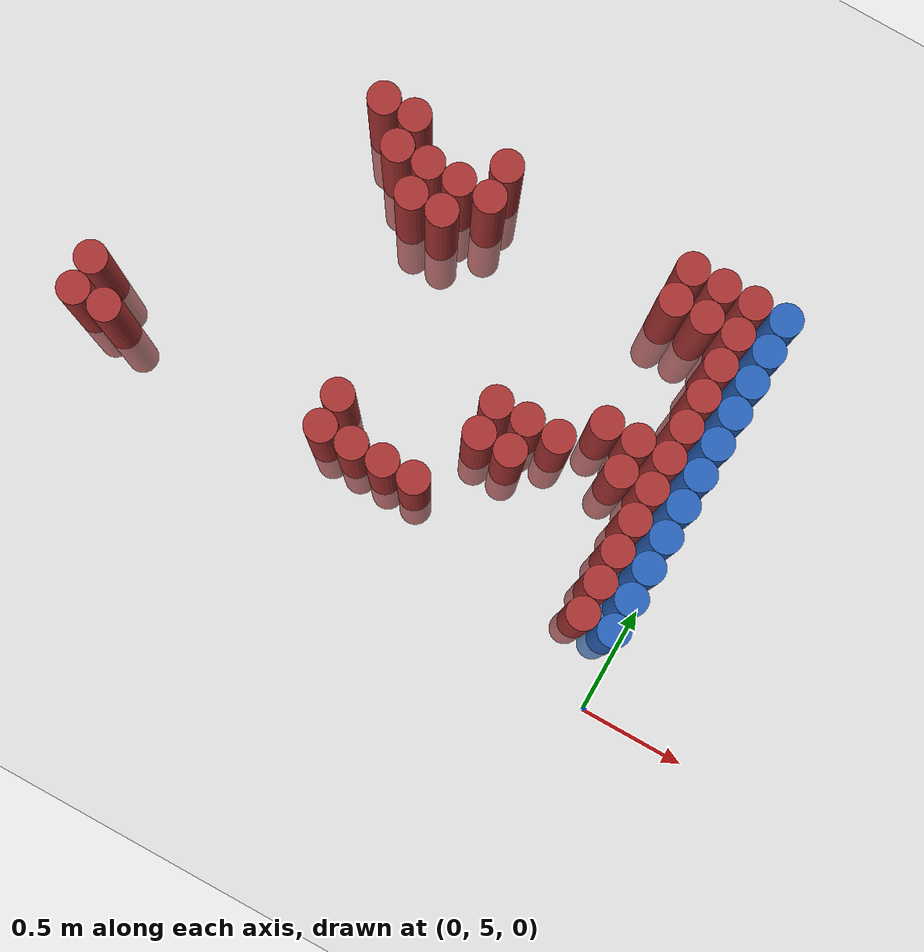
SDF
<sdf version="1.6">
 <world name="default">
  <model name="ground_plane">
   <static>1</static>
   <link name="link">
    <collision name="collision">
     <geometry><plane><normal>0 0 1</normal><size>100 100</size></plane></geometry>
     <surface><friction><ode><mu>100</mu><mu2>50</mu2></ode></friction></surface>
    </collision>
    <visual name="visual">
     <cast_shadows>0</cast_shadows>
     <geometry><plane><normal>0 0 1</normal><size>100 100</size></plane></geometry>
     <material>
      <script><uri>file://media/materials/scripts/gazebo.material</uri><name>Gazebo/Grey</name></script>
     </material>
    </visual>
   </link>
  </model>
  <model name="unit_cylinder_150">
   <static>1</static>
   <pose>-2.775000 5.475000 0.000000 0.000000 0.000000 0.000000</pose>
   <link name="link">
    <inertial>
     <mass>1</mass>
     <inertia><ixx>0.145833</ixx><ixy>0</ixy><ixz>0</ixz><iyy>0.145833</iyy><iyz>0</iyz><izz>0.125</izz></inertia>
    </inertial>
    <collision name="collision">
     <geometry><cylinder><radius>0.075000</radius><length>2</length></cylinder></geometry>
    </collision>
    <visual name="visual">
     <geometry><cylinder><radius>0.075000</radius><length>2</length></cylinder></geometry>
     <material>
      <ambient>0.648000 0.192000 0.192000 1</ambient>
      <diffuse>0.648000 0.192000 0.192000 1</diffuse>
     </material>
     <material>
      <script><name>Gazebo/Grey</name><uri>file://media/materials/scripts/gazebo.material</uri></script>
     </material>
    </visual>
   </link>
  </model>
  <model name="unit_cylinder_151">
   <static>1</static>
   <pose>-2.775000 5.625000 0.000000 0.000000 0.000000 0.000000</pose>
   <link name="link">
    <inertial>
     <mass>1</mass>
     <inertia><ixx>0.145833</ixx><ixy>0</ixy><ixz>0</ixz><iyy>0.145833</iyy><iyz>0</iyz><izz>0.125</izz></inertia>
    </inertial>
    <collision name="collision">
     <geometry><cylinder><radius>0.075000</radius><length>2</length></cylinder></geometry>
    </collision>
    <visual name="visual">
     <geometry><cylinder><radius>0.075000</radius><length>2</length></cylinder></geometry>
     <material>
      <ambient>0.648000 0.192000 0.192000 1</ambient>
      <diffuse>0.648000 0.192000 0.192000 1</diffuse>
     </material>
     <material>
      <script><name>Gazebo/Grey</name><uri>file://media/materials/scripts/gazebo.material</uri></script>
     </material>
    </visual>
   </link>
  </model>
  <model name="unit_cylinder_153">
   <static>1</static>
   <pose>-2.625000 5.475000 0.000000 0.000000 0.000000 0.000000</pose>
   <link name="link">
    <inertial>
     <mass>1</mass>
     <inertia><ixx>0.145833</ixx><ixy>0</ixy><ixz>0</ixz><iyy>0.145833</iyy><iyz>0</iyz><izz>0.125</izz></inertia>
    </inertial>
    <collision name="collision">
     <geometry><cylinder><radius>0.075000</radius><length>2</length></cylinder></geometry>
    </collision>
    <visual name="visual">
     <geometry><cylinder><radius>0.075000</radius><length>2</length></cylinder></geometry>
     <material>
      <ambient>0.648000 0.192000 0.192000 1</ambient>
      <diffuse>0.648000 0.192000 0.192000 1</diffuse>
     </material>
     <material>
      <script><name>Gazebo/Grey</name><uri>file://media/materials/scripts/gazebo.material</uri></script>
     </material>
    </visual>
   </link>
  </model>
  <model name="unit_cylinder_156">
   <static>1</static>
   <pose>-2.025000 6.825000 0.000000 0.000000 0.000000 0.000000</pose>
   <link name="link">
    <inertial>
     <mass>1</mass>
     <inertia><ixx>0.145833</ixx><ixy>0</ixy><ixz>0</ixz><iyy>0.145833</iyy><iyz>0</iyz><izz>0.125</izz></inertia>
    </inertial>
    <collision name="collision">
     <geometry><cylinder><radius>0.075000</radius><length>2</length></cylinder></geometry>
    </collision>
    <visual name="visual">
     <geometry><cylinder><radius>0.075000</radius><length>2</length></cylinder></geometry>
     <material>
      <ambient>0.648000 0.192000 0.192000 1</ambient>
      <diffuse>0.648000 0.192000 0.192000 1</diffuse>
     </material>
     <material>
      <script><name>Gazebo/Grey</name><uri>file://media/materials/scripts/gazebo.material</uri></script>
     </material>
    </visual>
   </link>
  </model>
  <model name="unit_cylinder_160">
   <static>1</static>
   <pose>-1.875000 6.675000 0.000000 0.000000 0.000000 0.000000</pose>
   <link name="link">
    <inertial>
     <mass>1</mass>
     <inertia><ixx>0.145833</ixx><ixy>0</ixy><ixz>0</ixz><iyy>0.145833</iyy><iyz>0</iyz><izz>0.125</izz></inertia>
    </inertial>
    <collision name="collision">
     <geometry><cylinder><radius>0.075000</radius><length>2</length></cylinder></geometry>
    </collision>
    <visual name="visual">
     <geometry><cylinder><radius>0.075000</radius><length>2</length></cylinder></geometry>
     <material>
      <ambient>0.648000 0.192000 0.192000 1</ambient>
      <diffuse>0.648000 0.192000 0.192000 1</diffuse>
     </material>
     <material>
      <script><name>Gazebo/Grey</name><uri>file://media/materials/scripts/gazebo.material</uri></script>
     </material>
    </visual>
   </link>
  </model>
  <model name="unit_cylinder_161">
   <static>1</static>
   <pose>-1.875000 6.825000 0.000000 0.000000 0.000000 0.000000</pose>
   <link name="link">
    <inertial>
     <mass>1</mass>
     <inertia><ixx>0.145833</ixx><ixy>0</ixy><ixz>0</ixz><iyy>0.145833</iyy><iyz>0</iyz><izz>0.125</izz></inertia>
    </inertial>
    <collision name="collision">
     <geometry><cylinder><radius>0.075000</radius><length>2</length></cylinder></geometry>
    </collision>
    <visual name="visual">
     <geometry><cylinder><radius>0.075000</radius><length>2</length></cylinder></geometry>
     <material>
      <ambient>0.648000 0.192000 0.192000 1</ambient>
      <diffuse>0.648000 0.192000 0.192000 1</diffuse>
     </material>
     <material>
      <script><name>Gazebo/Grey</name><uri>file://media/materials/scripts/gazebo.material</uri></script>
     </material>
    </visual>
   </link>
  </model>
  <model name="unit_cylinder_164">
   <static>1</static>
   <pose>-1.725000 6.525000 0.000000 0.000000 0.000000 0.000000</pose>
   <link name="link">
    <inertial>
     <mass>1</mass>
     <inertia><ixx>0.145833</ixx><ixy>0</ixy><ixz>0</ixz><iyy>0.145833</iyy><iyz>0</iyz><izz>0.125</izz></inertia>
    </inertial>
    <collision name="collision">
     <geometry><cylinder><radius>0.075000</radius><length>2</length></cylinder></geometry>
    </collision>
    <visual name="visual">
     <geometry><cylinder><radius>0.075000</radius><length>2</length></cylinder></geometry>
     <material>
      <ambient>0.648000 0.192000 0.192000 1</ambient>
      <diffuse>0.648000 0.192000 0.192000 1</diffuse>
     </material>
     <material>
      <script><name>Gazebo/Grey</name><uri>file://media/materials/scripts/gazebo.material</uri></script>
     </material>
    </visual>
   </link>
  </model>
  <model name="unit_cylinder_165">
   <static>1</static>
   <pose>-1.725000 6.675000 0.000000 0.000000 0.000000 0.000000</pose>
   <link name="link">
    <inertial>
     <mass>1</mass>
     <inertia><ixx>0.145833</ixx><ixy>0</ixy><ixz>0</ixz><iyy>0.145833</iyy><iyz>0</iyz><izz>0.125</izz></inertia>
    </inertial>
    <collision name="collision">
     <geometry><cylinder><radius>0.075000</radius><length>2</length></cylinder></geometry>
    </collision>
    <visual name="visual">
     <geometry><cylinder><radius>0.075000</radius><length>2</length></cylinder></geometry>
     <material>
      <ambient>0.648000 0.192000 0.192000 1</ambient>
      <diffuse>0.648000 0.192000 0.192000 1</diffuse>
     </material>
     <material>
      <script><name>Gazebo/Grey</name><uri>file://media/materials/scripts/gazebo.material</uri></script>
     </material>
    </visual>
   </link>
  </model>
  <model name="unit_cylinder_169">
   <static>1</static>
   <pose>-1.575000 5.475000 0.000000 0.000000 0.000000 0.000000</pose>
   <link name="link">
    <inertial>
     <mass>1</mass>
     <inertia><ixx>0.145833</ixx><ixy>0</ixy><ixz>0</ixz><iyy>0.145833</iyy><iyz>0</iyz><izz>0.125</izz></inertia>
    </inertial>
    <collision name="collision">
     <geometry><cylinder><radius>0.075000</radius><length>2</length></cylinder></geometry>
    </collision>
    <visual name="visual">
     <geometry><cylinder><radius>0.075000</radius><length>2</length></cylinder></geometry>
     <material>
      <ambient>0.648000 0.192000 0.192000 1</ambient>
      <diffuse>0.648000 0.192000 0.192000 1</diffuse>
     </material>
     <material>
      <script><name>Gazebo/Grey</name><uri>file://media/materials/scripts/gazebo.material</uri></script>
     </material>
    </visual>
   </link>
  </model>
  <model name="unit_cylinder_170">
   <static>1</static>
   <pose>-1.575000 5.625000 0.000000 0.000000 0.000000 0.000000</pose>
   <link name="link">
    <inertial>
     <mass>1</mass>
     <inertia><ixx>0.145833</ixx><ixy>0</ixy><ixz>0</ixz><iyy>0.145833</iyy><iyz>0</iyz><izz>0.125</izz></inertia>
    </inertial>
    <collision name="collision">
     <geometry><cylinder><radius>0.075000</radius><length>2</length></cylinder></geometry>
    </collision>
    <visual name="visual">
     <geometry><cylinder><radius>0.075000</radius><length>2</length></cylinder></geometry>
     <material>
      <ambient>0.648000 0.192000 0.192000 1</ambient>
      <diffuse>0.648000 0.192000 0.192000 1</diffuse>
     </material>
     <material>
      <script><name>Gazebo/Grey</name><uri>file://media/materials/scripts/gazebo.material</uri></script>
     </material>
    </visual>
   </link>
  </model>
  <model name="unit_cylinder_171">
   <static>1</static>
   <pose>-1.575000 6.525000 0.000000 0.000000 0.000000 0.000000</pose>
   <link name="link">
    <inertial>
     <mass>1</mass>
     <inertia><ixx>0.145833</ixx><ixy>0</ixy><ixz>0</ixz><iyy>0.145833</iyy><iyz>0</iyz><izz>0.125</izz></inertia>
    </inertial>
    <collision name="collision">
     <geometry><cylinder><radius>0.075000</radius><length>2</length></cylinder></geometry>
    </collision>
    <visual name="visual">
     <geometry><cylinder><radius>0.075000</radius><length>2</length></cylinder></geometry>
     <material>
      <ambient>0.648000 0.192000 0.192000 1</ambient>
      <diffuse>0.648000 0.192000 0.192000 1</diffuse>
     </material>
     <material>
      <script><name>Gazebo/Grey</name><uri>file://media/materials/scripts/gazebo.material</uri></script>
     </material>
    </visual>
   </link>
  </model>
  <model name="unit_cylinder_172">
   <static>1</static>
   <pose>-1.575000 6.675000 0.000000 0.000000 0.000000 0.000000</pose>
   <link name="link">
    <inertial>
     <mass>1</mass>
     <inertia><ixx>0.145833</ixx><ixy>0</ixy><ixz>0</ixz><iyy>0.145833</iyy><iyz>0</iyz><izz>0.125</izz></inertia>
    </inertial>
    <collision name="collision">
     <geometry><cylinder><radius>0.075000</radius><length>2</length></cylinder></geometry>
    </collision>
    <visual name="visual">
     <geometry><cylinder><radius>0.075000</radius><length>2</length></cylinder></geometry>
     <material>
      <ambient>0.648000 0.192000 0.192000 1</ambient>
      <diffuse>0.648000 0.192000 0.192000 1</diffuse>
     </material>
     <material>
      <script><name>Gazebo/Grey</name><uri>file://media/materials/scripts/gazebo.material</uri></script>
     </material>
    </visual>
   </link>
  </model>
  <model name="unit_cylinder_177">
   <static>1</static>
   <pose>-1.425000 5.475000 0.000000 0.000000 0.000000 0.000000</pose>
   <link name="link">
    <inertial>
     <mass>1</mass>
     <inertia><ixx>0.145833</ixx><ixy>0</ixy><ixz>0</ixz><iyy>0.145833</iyy><iyz>0</iyz><izz>0.125</izz></inertia>
    </inertial>
    <collision name="collision">
     <geometry><cylinder><radius>0.075000</radius><length>2</length></cylinder></geometry>
    </collision>
    <visual name="visual">
     <geometry><cylinder><radius>0.075000</radius><length>2</length></cylinder></geometry>
     <material>
      <ambient>0.648000 0.192000 0.192000 1</ambient>
      <diffuse>0.648000 0.192000 0.192000 1</diffuse>
     </material>
     <material>
      <script><name>Gazebo/Grey</name><uri>file://media/materials/scripts/gazebo.material</uri></script>
     </material>
    </visual>
   </link>
  </model>
  <model name="unit_cylinder_178">
   <static>1</static>
   <pose>-1.425000 6.675000 0.000000 0.000000 0.000000 0.000000</pose>
   <link name="link">
    <inertial>
     <mass>1</mass>
     <inertia><ixx>0.145833</ixx><ixy>0</ixy><ixz>0</ixz><iyy>0.145833</iyy><iyz>0</iyz><izz>0.125</izz></inertia>
    </inertial>
    <collision name="collision">
     <geometry><cylinder><radius>0.075000</radius><length>2</length></cylinder></geometry>
    </collision>
    <visual name="visual">
     <geometry><cylinder><radius>0.075000</radius><length>2</length></cylinder></geometry>
     <material>
      <ambient>0.648000 0.192000 0.192000 1</ambient>
      <diffuse>0.648000 0.192000 0.192000 1</diffuse>
     </material>
     <material>
      <script><name>Gazebo/Grey</name><uri>file://media/materials/scripts/gazebo.material</uri></script>
     </material>
    </visual>
   </link>
  </model>
  <model name="unit_cylinder_179">
   <static>1</static>
   <pose>-1.425000 6.825000 0.000000 0.000000 0.000000 0.000000</pose>
   <link name="link">
    <inertial>
     <mass>1</mass>
     <inertia><ixx>0.145833</ixx><ixy>0</ixy><ixz>0</ixz><iyy>0.145833</iyy><iyz>0</iyz><izz>0.125</izz></inertia>
    </inertial>
    <collision name="collision">
     <geometry><cylinder><radius>0.075000</radius><length>2</length></cylinder></geometry>
    </collision>
    <visual name="visual">
     <geometry><cylinder><radius>0.075000</radius><length>2</length></cylinder></geometry>
     <material>
      <ambient>0.648000 0.192000 0.192000 1</ambient>
      <diffuse>0.648000 0.192000 0.192000 1</diffuse>
     </material>
     <material>
      <script><name>Gazebo/Grey</name><uri>file://media/materials/scripts/gazebo.material</uri></script>
     </material>
    </visual>
   </link>
  </model>
  <model name="unit_cylinder_182">
   <static>1</static>
   <pose>-1.275000 5.475000 0.000000 0.000000 0.000000 0.000000</pose>
   <link name="link">
    <inertial>
     <mass>1</mass>
     <inertia><ixx>0.145833</ixx><ixy>0</ixy><ixz>0</ixz><iyy>0.145833</iyy><iyz>0</iyz><izz>0.125</izz></inertia>
    </inertial>
    <collision name="collision">
     <geometry><cylinder><radius>0.075000</radius><length>2</length></cylinder></geometry>
    </collision>
    <visual name="visual">
     <geometry><cylinder><radius>0.075000</radius><length>2</length></cylinder></geometry>
     <material>
      <ambient>0.648000 0.192000 0.192000 1</ambient>
      <diffuse>0.648000 0.192000 0.192000 1</diffuse>
     </material>
     <material>
      <script><name>Gazebo/Grey</name><uri>file://media/materials/scripts/gazebo.material</uri></script>
     </material>
    </visual>
   </link>
  </model>
  <model name="unit_cylinder_184">
   <static>1</static>
   <pose>-1.125000 5.475000 0.000000 0.000000 0.000000 0.000000</pose>
   <link name="link">
    <inertial>
     <mass>1</mass>
     <inertia><ixx>0.145833</ixx><ixy>0</ixy><ixz>0</ixz><iyy>0.145833</iyy><iyz>0</iyz><izz>0.125</izz></inertia>
    </inertial>
    <collision name="collision">
     <geometry><cylinder><radius>0.075000</radius><length>2</length></cylinder></geometry>
    </collision>
    <visual name="visual">
     <geometry><cylinder><radius>0.075000</radius><length>2</length></cylinder></geometry>
     <material>
      <ambient>0.648000 0.192000 0.192000 1</ambient>
      <diffuse>0.648000 0.192000 0.192000 1</diffuse>
     </material>
     <material>
      <script><name>Gazebo/Grey</name><uri>file://media/materials/scripts/gazebo.material</uri></script>
     </material>
    </visual>
   </link>
  </model>
  <model name="unit_cylinder_185">
   <static>1</static>
   <pose>-0.975000 5.775000 0.000000 0.000000 0.000000 0.000000</pose>
   <link name="link">
    <inertial>
     <mass>1</mass>
     <inertia><ixx>0.145833</ixx><ixy>0</ixy><ixz>0</ixz><iyy>0.145833</iyy><iyz>0</iyz><izz>0.125</izz></inertia>
    </inertial>
    <collision name="collision">
     <geometry><cylinder><radius>0.075000</radius><length>2</length></cylinder></geometry>
    </collision>
    <visual name="visual">
     <geometry><cylinder><radius>0.075000</radius><length>2</length></cylinder></geometry>
     <material>
      <ambient>0.648000 0.192000 0.192000 1</ambient>
      <diffuse>0.648000 0.192000 0.192000 1</diffuse>
     </material>
     <material>
      <script><name>Gazebo/Grey</name><uri>file://media/materials/scripts/gazebo.material</uri></script>
     </material>
    </visual>
   </link>
  </model>
  <model name="unit_cylinder_186">
   <static>1</static>
   <pose>-0.975000 5.925000 0.000000 0.000000 0.000000 0.000000</pose>
   <link name="link">
    <inertial>
     <mass>1</mass>
     <inertia><ixx>0.145833</ixx><ixy>0</ixy><ixz>0</ixz><iyy>0.145833</iyy><iyz>0</iyz><izz>0.125</izz></inertia>
    </inertial>
    <collision name="collision">
     <geometry><cylinder><radius>0.075000</radius><length>2</length></cylinder></geometry>
    </collision>
    <visual name="visual">
     <geometry><cylinder><radius>0.075000</radius><length>2</length></cylinder></geometry>
     <material>
      <ambient>0.648000 0.192000 0.192000 1</ambient>
      <diffuse>0.648000 0.192000 0.192000 1</diffuse>
     </material>
     <material>
      <script><name>Gazebo/Grey</name><uri>file://media/materials/scripts/gazebo.material</uri></script>
     </material>
    </visual>
   </link>
  </model>
  <model name="unit_cylinder_189">
   <static>1</static>
   <pose>-0.825000 5.775000 0.000000 0.000000 0.000000 0.000000</pose>
   <link name="link">
    <inertial>
     <mass>1</mass>
     <inertia><ixx>0.145833</ixx><ixy>0</ixy><ixz>0</ixz><iyy>0.145833</iyy><iyz>0</iyz><izz>0.125</izz></inertia>
    </inertial>
    <collision name="collision">
     <geometry><cylinder><radius>0.075000</radius><length>2</length></cylinder></geometry>
    </collision>
    <visual name="visual">
     <geometry><cylinder><radius>0.075000</radius><length>2</length></cylinder></geometry>
     <material>
      <ambient>0.648000 0.192000 0.192000 1</ambient>
      <diffuse>0.648000 0.192000 0.192000 1</diffuse>
     </material>
     <material>
      <script><name>Gazebo/Grey</name><uri>file://media/materials/scripts/gazebo.material</uri></script>
     </material>
    </visual>
   </link>
  </model>
  <model name="unit_cylinder_190">
   <static>1</static>
   <pose>-0.825000 5.925000 0.000000 0.000000 0.000000 0.000000</pose>
   <link name="link">
    <inertial>
     <mass>1</mass>
     <inertia><ixx>0.145833</ixx><ixy>0</ixy><ixz>0</ixz><iyy>0.145833</iyy><iyz>0</iyz><izz>0.125</izz></inertia>
    </inertial>
    <collision name="collision">
     <geometry><cylinder><radius>0.075000</radius><length>2</length></cylinder></geometry>
    </collision>
    <visual name="visual">
     <geometry><cylinder><radius>0.075000</radius><length>2</length></cylinder></geometry>
     <material>
      <ambient>0.648000 0.192000 0.192000 1</ambient>
      <diffuse>0.648000 0.192000 0.192000 1</diffuse>
     </material>
     <material>
      <script><name>Gazebo/Grey</name><uri>file://media/materials/scripts/gazebo.material</uri></script>
     </material>
    </visual>
   </link>
  </model>
  <model name="unit_cylinder_193">
   <static>1</static>
   <pose>-0.675000 5.925000 0.000000 0.000000 0.000000 0.000000</pose>
   <link name="link">
    <inertial>
     <mass>1</mass>
     <inertia><ixx>0.145833</ixx><ixy>0</ixy><ixz>0</ixz><iyy>0.145833</iyy><iyz>0</iyz><izz>0.125</izz></inertia>
    </inertial>
    <collision name="collision">
     <geometry><cylinder><radius>0.075000</radius><length>2</length></cylinder></geometry>
    </collision>
    <visual name="visual">
     <geometry><cylinder><radius>0.075000</radius><length>2</length></cylinder></geometry>
     <material>
      <ambient>0.648000 0.192000 0.192000 1</ambient>
      <diffuse>0.648000 0.192000 0.192000 1</diffuse>
     </material>
     <material>
      <script><name>Gazebo/Grey</name><uri>file://media/materials/scripts/gazebo.material</uri></script>
     </material>
    </visual>
   </link>
  </model>
  <model name="unit_cylinder_196">
   <static>1</static>
   <pose>-0.525000 6.075000 0.000000 0.000000 0.000000 0.000000</pose>
   <link name="link">
    <inertial>
     <mass>1</mass>
     <inertia><ixx>0.145833</ixx><ixy>0</ixy><ixz>0</ixz><iyy>0.145833</iyy><iyz>0</iyz><izz>0.125</izz></inertia>
    </inertial>
    <collision name="collision">
     <geometry><cylinder><radius>0.075000</radius><length>2</length></cylinder></geometry>
    </collision>
    <visual name="visual">
     <geometry><cylinder><radius>0.075000</radius><length>2</length></cylinder></geometry>
     <material>
      <ambient>0.648000 0.192000 0.192000 1</ambient>
      <diffuse>0.648000 0.192000 0.192000 1</diffuse>
     </material>
     <material>
      <script><name>Gazebo/Grey</name><uri>file://media/materials/scripts/gazebo.material</uri></script>
     </material>
    </visual>
   </link>
  </model>
  <model name="unit_cylinder_197">
   <static>1</static>
   <pose>-0.525000 6.675000 0.000000 0.000000 0.000000 0.000000</pose>
   <link name="link">
    <inertial>
     <mass>1</mass>
     <inertia><ixx>0.145833</ixx><ixy>0</ixy><ixz>0</ixz><iyy>0.145833</iyy><iyz>0</iyz><izz>0.125</izz></inertia>
    </inertial>
    <collision name="collision">
     <geometry><cylinder><radius>0.075000</radius><length>2</length></cylinder></geometry>
    </collision>
    <visual name="visual">
     <geometry><cylinder><radius>0.075000</radius><length>2</length></cylinder></geometry>
     <material>
      <ambient>0.648000 0.192000 0.192000 1</ambient>
      <diffuse>0.648000 0.192000 0.192000 1</diffuse>
     </material>
     <material>
      <script><name>Gazebo/Grey</name><uri>file://media/materials/scripts/gazebo.material</uri></script>
     </material>
    </visual>
   </link>
  </model>
  <model name="unit_cylinder_198">
   <static>1</static>
   <pose>-0.525000 6.825000 0.000000 0.000000 0.000000 0.000000</pose>
   <link name="link">
    <inertial>
     <mass>1</mass>
     <inertia><ixx>0.145833</ixx><ixy>0</ixy><ixz>0</ixz><iyy>0.145833</iyy><iyz>0</iyz><izz>0.125</izz></inertia>
    </inertial>
    <collision name="collision">
     <geometry><cylinder><radius>0.075000</radius><length>2</length></cylinder></geometry>
    </collision>
    <visual name="visual">
     <geometry><cylinder><radius>0.075000</radius><length>2</length></cylinder></geometry>
     <material>
      <ambient>0.648000 0.192000 0.192000 1</ambient>
      <diffuse>0.648000 0.192000 0.192000 1</diffuse>
     </material>
     <material>
      <script><name>Gazebo/Grey</name><uri>file://media/materials/scripts/gazebo.material</uri></script>
     </material>
    </visual>
   </link>
  </model>
  <model name="unit_cylinder_200">
   <static>1</static>
   <pose>-0.375000 5.925000 0.000000 0.000000 0.000000 0.000000</pose>
   <link name="link">
    <inertial>
     <mass>1</mass>
     <inertia><ixx>0.145833</ixx><ixy>0</ixy><ixz>0</ixz><iyy>0.145833</iyy><iyz>0</iyz><izz>0.125</izz></inertia>
    </inertial>
    <collision name="collision">
     <geometry><cylinder><radius>0.075000</radius><length>2</length></cylinder></geometry>
    </collision>
    <visual name="visual">
     <geometry><cylinder><radius>0.075000</radius><length>2</length></cylinder></geometry>
     <material>
      <ambient>0.648000 0.192000 0.192000 1</ambient>
      <diffuse>0.648000 0.192000 0.192000 1</diffuse>
     </material>
     <material>
      <script><name>Gazebo/Grey</name><uri>file://media/materials/scripts/gazebo.material</uri></script>
     </material>
    </visual>
   </link>
  </model>
  <model name="unit_cylinder_201">
   <static>1</static>
   <pose>-0.375000 6.075000 0.000000 0.000000 0.000000 0.000000</pose>
   <link name="link">
    <inertial>
     <mass>1</mass>
     <inertia><ixx>0.145833</ixx><ixy>0</ixy><ixz>0</ixz><iyy>0.145833</iyy><iyz>0</iyz><izz>0.125</izz></inertia>
    </inertial>
    <collision name="collision">
     <geometry><cylinder><radius>0.075000</radius><length>2</length></cylinder></geometry>
    </collision>
    <visual name="visual">
     <geometry><cylinder><radius>0.075000</radius><length>2</length></cylinder></geometry>
     <material>
      <ambient>0.648000 0.192000 0.192000 1</ambient>
      <diffuse>0.648000 0.192000 0.192000 1</diffuse>
     </material>
     <material>
      <script><name>Gazebo/Grey</name><uri>file://media/materials/scripts/gazebo.material</uri></script>
     </material>
    </visual>
   </link>
  </model>
  <model name="unit_cylinder_202">
   <static>1</static>
   <pose>-0.375000 6.675000 0.000000 0.000000 0.000000 0.000000</pose>
   <link name="link">
    <inertial>
     <mass>1</mass>
     <inertia><ixx>0.145833</ixx><ixy>0</ixy><ixz>0</ixz><iyy>0.145833</iyy><iyz>0</iyz><izz>0.125</izz></inertia>
    </inertial>
    <collision name="collision">
     <geometry><cylinder><radius>0.075000</radius><length>2</length></cylinder></geometry>
    </collision>
    <visual name="visual">
     <geometry><cylinder><radius>0.075000</radius><length>2</length></cylinder></geometry>
     <material>
      <ambient>0.648000 0.192000 0.192000 1</ambient>
      <diffuse>0.648000 0.192000 0.192000 1</diffuse>
     </material>
     <material>
      <script><name>Gazebo/Grey</name><uri>file://media/materials/scripts/gazebo.material</uri></script>
     </material>
    </visual>
   </link>
  </model>
  <model name="unit_cylinder_203">
   <static>1</static>
   <pose>-0.375000 6.825000 0.000000 0.000000 0.000000 0.000000</pose>
   <link name="link">
    <inertial>
     <mass>1</mass>
     <inertia><ixx>0.145833</ixx><ixy>0</ixy><ixz>0</ixz><iyy>0.145833</iyy><iyz>0</iyz><izz>0.125</izz></inertia>
    </inertial>
    <collision name="collision">
     <geometry><cylinder><radius>0.075000</radius><length>2</length></cylinder></geometry>
    </collision>
    <visual name="visual">
     <geometry><cylinder><radius>0.075000</radius><length>2</length></cylinder></geometry>
     <material>
      <ambient>0.648000 0.192000 0.192000 1</ambient>
      <diffuse>0.648000 0.192000 0.192000 1</diffuse>
     </material>
     <material>
      <script><name>Gazebo/Grey</name><uri>file://media/materials/scripts/gazebo.material</uri></script>
     </material>
    </visual>
   </link>
  </model>
  <model name="unit_cylinder_205">
   <static>1</static>
   <pose>-0.225000 5.325000 0.000000 0.000000 0.000000 0.000000</pose>
   <link name="link">
    <inertial>
     <mass>1</mass>
     <inertia><ixx>0.145833</ixx><ixy>0</ixy><ixz>0</ixz><iyy>0.145833</iyy><iyz>0</iyz><izz>0.125</izz></inertia>
    </inertial>
    <collision name="collision">
     <geometry><cylinder><radius>0.075000</radius><length>2</length></cylinder></geometry>
    </collision>
    <visual name="visual">
     <geometry><cylinder><radius>0.075000</radius><length>2</length></cylinder></geometry>
     <material>
      <ambient>0.648000 0.192000 0.192000 1</ambient>
      <diffuse>0.648000 0.192000 0.192000 1</diffuse>
     </material>
     <material>
      <script><name>Gazebo/Grey</name><uri>file://media/materials/scripts/gazebo.material</uri></script>
     </material>
    </visual>
   </link>
  </model>
  <model name="unit_cylinder_206">
   <static>1</static>
   <pose>-0.225000 5.475000 0.000000 0.000000 0.000000 0.000000</pose>
   <link name="link">
    <inertial>
     <mass>1</mass>
     <inertia><ixx>0.145833</ixx><ixy>0</ixy><ixz>0</ixz><iyy>0.145833</iyy><iyz>0</iyz><izz>0.125</izz></inertia>
    </inertial>
    <collision name="collision">
     <geometry><cylinder><radius>0.075000</radius><length>2</length></cylinder></geometry>
    </collision>
    <visual name="visual">
     <geometry><cylinder><radius>0.075000</radius><length>2</length></cylinder></geometry>
     <material>
      <ambient>0.648000 0.192000 0.192000 1</ambient>
      <diffuse>0.648000 0.192000 0.192000 1</diffuse>
     </material>
     <material>
      <script><name>Gazebo/Grey</name><uri>file://media/materials/scripts/gazebo.material</uri></script>
     </material>
    </visual>
   </link>
  </model>
  <model name="unit_cylinder_207">
   <static>1</static>
   <pose>-0.225000 5.625000 0.000000 0.000000 0.000000 0.000000</pose>
   <link name="link">
    <inertial>
     <mass>1</mass>
     <inertia><ixx>0.145833</ixx><ixy>0</ixy><ixz>0</ixz><iyy>0.145833</iyy><iyz>0</iyz><izz>0.125</izz></inertia>
    </inertial>
    <collision name="collision">
     <geometry><cylinder><radius>0.075000</radius><length>2</length></cylinder></geometry>
    </collision>
    <visual name="visual">
     <geometry><cylinder><radius>0.075000</radius><length>2</length></cylinder></geometry>
     <material>
      <ambient>0.648000 0.192000 0.192000 1</ambient>
      <diffuse>0.648000 0.192000 0.192000 1</diffuse>
     </material>
     <material>
      <script><name>Gazebo/Grey</name><uri>file://media/materials/scripts/gazebo.material</uri></script>
     </material>
    </visual>
   </link>
  </model>
  <model name="unit_cylinder_208">
   <static>1</static>
   <pose>-0.225000 5.775000 0.000000 0.000000 0.000000 0.000000</pose>
   <link name="link">
    <inertial>
     <mass>1</mass>
     <inertia><ixx>0.145833</ixx><ixy>0</ixy><ixz>0</ixz><iyy>0.145833</iyy><iyz>0</iyz><izz>0.125</izz></inertia>
    </inertial>
    <collision name="collision">
     <geometry><cylinder><radius>0.075000</radius><length>2</length></cylinder></geometry>
    </collision>
    <visual name="visual">
     <geometry><cylinder><radius>0.075000</radius><length>2</length></cylinder></geometry>
     <material>
      <ambient>0.648000 0.192000 0.192000 1</ambient>
      <diffuse>0.648000 0.192000 0.192000 1</diffuse>
     </material>
     <material>
      <script><name>Gazebo/Grey</name><uri>file://media/materials/scripts/gazebo.material</uri></script>
     </material>
    </visual>
   </link>
  </model>
  <model name="unit_cylinder_209">
   <static>1</static>
   <pose>-0.225000 5.925000 0.000000 0.000000 0.000000 0.000000</pose>
   <link name="link">
    <inertial>
     <mass>1</mass>
     <inertia><ixx>0.145833</ixx><ixy>0</ixy><ixz>0</ixz><iyy>0.145833</iyy><iyz>0</iyz><izz>0.125</izz></inertia>
    </inertial>
    <collision name="collision">
     <geometry><cylinder><radius>0.075000</radius><length>2</length></cylinder></geometry>
    </collision>
    <visual name="visual">
     <geometry><cylinder><radius>0.075000</radius><length>2</length></cylinder></geometry>
     <material>
      <ambient>0.648000 0.192000 0.192000 1</ambient>
      <diffuse>0.648000 0.192000 0.192000 1</diffuse>
     </material>
     <material>
      <script><name>Gazebo/Grey</name><uri>file://media/materials/scripts/gazebo.material</uri></script>
     </material>
    </visual>
   </link>
  </model>
  <model name="unit_cylinder_210">
   <static>1</static>
   <pose>-0.225000 6.075000 0.000000 0.000000 0.000000 0.000000</pose>
   <link name="link">
    <inertial>
     <mass>1</mass>
     <inertia><ixx>0.145833</ixx><ixy>0</ixy><ixz>0</ixz><iyy>0.145833</iyy><iyz>0</iyz><izz>0.125</izz></inertia>
    </inertial>
    <collision name="collision">
     <geometry><cylinder><radius>0.075000</radius><length>2</length></cylinder></geometry>
    </collision>
    <visual name="visual">
     <geometry><cylinder><radius>0.075000</radius><length>2</length></cylinder></geometry>
     <material>
      <ambient>0.648000 0.192000 0.192000 1</ambient>
      <diffuse>0.648000 0.192000 0.192000 1</diffuse>
     </material>
     <material>
      <script><name>Gazebo/Grey</name><uri>file://media/materials/scripts/gazebo.material</uri></script>
     </material>
    </visual>
   </link>
  </model>
  <model name="unit_cylinder_211">
   <static>1</static>
   <pose>-0.225000 6.225000 0.000000 0.000000 0.000000 0.000000</pose>
   <link name="link">
    <inertial>
     <mass>1</mass>
     <inertia><ixx>0.145833</ixx><ixy>0</ixy><ixz>0</ixz><iyy>0.145833</iyy><iyz>0</iyz><izz>0.125</izz></inertia>
    </inertial>
    <collision name="collision">
     <geometry><cylinder><radius>0.075000</radius><length>2</length></cylinder></geometry>
    </collision>
    <visual name="visual">
     <geometry><cylinder><radius>0.075000</radius><length>2</length></cylinder></geometry>
     <material>
      <ambient>0.648000 0.192000 0.192000 1</ambient>
      <diffuse>0.648000 0.192000 0.192000 1</diffuse>
     </material>
     <material>
      <script><name>Gazebo/Grey</name><uri>file://media/materials/scripts/gazebo.material</uri></script>
     </material>
    </visual>
   </link>
  </model>
  <model name="unit_cylinder_212">
   <static>1</static>
   <pose>-0.225000 6.375000 0.000000 0.000000 0.000000 0.000000</pose>
   <link name="link">
    <inertial>
     <mass>1</mass>
     <inertia><ixx>0.145833</ixx><ixy>0</ixy><ixz>0</ixz><iyy>0.145833</iyy><iyz>0</iyz><izz>0.125</izz></inertia>
    </inertial>
    <collision name="collision">
     <geometry><cylinder><radius>0.075000</radius><length>2</length></cylinder></geometry>
    </collision>
    <visual name="visual">
     <geometry><cylinder><radius>0.075000</radius><length>2</length></cylinder></geometry>
     <material>
      <ambient>0.648000 0.192000 0.192000 1</ambient>
      <diffuse>0.648000 0.192000 0.192000 1</diffuse>
     </material>
     <material>
      <script><name>Gazebo/Grey</name><uri>file://media/materials/scripts/gazebo.material</uri></script>
     </material>
    </visual>
   </link>
  </model>
  <model name="unit_cylinder_213">
   <static>1</static>
   <pose>-0.225000 6.525000 0.000000 0.000000 0.000000 0.000000</pose>
   <link name="link">
    <inertial>
     <mass>1</mass>
     <inertia><ixx>0.145833</ixx><ixy>0</ixy><ixz>0</ixz><iyy>0.145833</iyy><iyz>0</iyz><izz>0.125</izz></inertia>
    </inertial>
    <collision name="collision">
     <geometry><cylinder><radius>0.075000</radius><length>2</length></cylinder></geometry>
    </collision>
    <visual name="visual">
     <geometry><cylinder><radius>0.075000</radius><length>2</length></cylinder></geometry>
     <material>
      <ambient>0.648000 0.192000 0.192000 1</ambient>
      <diffuse>0.648000 0.192000 0.192000 1</diffuse>
     </material>
     <material>
      <script><name>Gazebo/Grey</name><uri>file://media/materials/scripts/gazebo.material</uri></script>
     </material>
    </visual>
   </link>
  </model>
  <model name="unit_cylinder_214">
   <static>1</static>
   <pose>-0.225000 6.675000 0.000000 0.000000 0.000000 0.000000</pose>
   <link name="link">
    <inertial>
     <mass>1</mass>
     <inertia><ixx>0.145833</ixx><ixy>0</ixy><ixz>0</ixz><iyy>0.145833</iyy><iyz>0</iyz><izz>0.125</izz></inertia>
    </inertial>
    <collision name="collision">
     <geometry><cylinder><radius>0.075000</radius><length>2</length></cylinder></geometry>
    </collision>
    <visual name="visual">
     <geometry><cylinder><radius>0.075000</radius><length>2</length></cylinder></geometry>
     <material>
      <ambient>0.648000 0.192000 0.192000 1</ambient>
      <diffuse>0.648000 0.192000 0.192000 1</diffuse>
     </material>
     <material>
      <script><name>Gazebo/Grey</name><uri>file://media/materials/scripts/gazebo.material</uri></script>
     </material>
    </visual>
   </link>
  </model>
  <model name="unit_cylinder_215">
   <static>1</static>
   <pose>-0.225000 6.825000 0.000000 0.000000 0.000000 0.000000</pose>
   <link name="link">
    <inertial>
     <mass>1</mass>
     <inertia><ixx>0.145833</ixx><ixy>0</ixy><ixz>0</ixz><iyy>0.145833</iyy><iyz>0</iyz><izz>0.125</izz></inertia>
    </inertial>
    <collision name="collision">
     <geometry><cylinder><radius>0.075000</radius><length>2</length></cylinder></geometry>
    </collision>
    <visual name="visual">
     <geometry><cylinder><radius>0.075000</radius><length>2</length></cylinder></geometry>
     <material>
      <ambient>0.648000 0.192000 0.192000 1</ambient>
      <diffuse>0.648000 0.192000 0.192000 1</diffuse>
     </material>
     <material>
      <script><name>Gazebo/Grey</name><uri>file://media/materials/scripts/gazebo.material</uri></script>
     </material>
    </visual>
   </link>
  </model>
  <model name="unit_cylinder_227">
   <static>1</static>
   <pose>-0.075000 5.325000 0.000000 0.000000 0.000000 0.000000</pose>
   <link name="link">
    <inertial>
     <mass>1</mass>
     <inertia><ixx>0.145833</ixx><ixy>0</ixy><ixz>0</ixz><iyy>0.145833</iyy><iyz>0</iyz><izz>0.125</izz></inertia>
    </inertial>
    <collision name="collision">
     <geometry><cylinder><radius>0.075000</radius><length>2</length></cylinder></geometry>
    </collision>
    <visual name="visual">
     <geometry><cylinder><radius>0.075000</radius><length>2</length></cylinder></geometry>
     <material>
      <ambient>0.152000 0.379000 0.720000 1</ambient>
      <diffuse>0.152000 0.379000 0.720000 1</diffuse>
     </material>
     <material>
      <script><name>Gazebo/Grey</name><uri>file://media/materials/scripts/gazebo.material</uri></script>
     </material>
    </visual>
   </link>
  </model>
  <model name="unit_cylinder_228">
   <static>1</static>
   <pose>-0.075000 5.475000 0.000000 0.000000 0.000000 0.000000</pose>
   <link name="link">
    <inertial>
     <mass>1</mass>
     <inertia><ixx>0.145833</ixx><ixy>0</ixy><ixz>0</ixz><iyy>0.145833</iyy><iyz>0</iyz><izz>0.125</izz></inertia>
    </inertial>
    <collision name="collision">
     <geometry><cylinder><radius>0.075000</radius><length>2</length></cylinder></geometry>
    </collision>
    <visual name="visual">
     <geometry><cylinder><radius>0.075000</radius><length>2</length></cylinder></geometry>
     <material>
      <ambient>0.152000 0.379000 0.720000 1</ambient>
      <diffuse>0.152000 0.379000 0.720000 1</diffuse>
     </material>
     <material>
      <script><name>Gazebo/Grey</name><uri>file://media/materials/scripts/gazebo.material</uri></script>
     </material>
    </visual>
   </link>
  </model>
  <model name="unit_cylinder_229">
   <static>1</static>
   <pose>-0.075000 5.625000 0.000000 0.000000 0.000000 0.000000</pose>
   <link name="link">
    <inertial>
     <mass>1</mass>
     <inertia><ixx>0.145833</ixx><ixy>0</ixy><ixz>0</ixz><iyy>0.145833</iyy><iyz>0</iyz><izz>0.125</izz></inertia>
    </inertial>
    <collision name="collision">
     <geometry><cylinder><radius>0.075000</radius><length>2</length></cylinder></geometry>
    </collision>
    <visual name="visual">
     <geometry><cylinder><radius>0.075000</radius><length>2</length></cylinder></geometry>
     <material>
      <ambient>0.152000 0.379000 0.720000 1</ambient>
      <diffuse>0.152000 0.379000 0.720000 1</diffuse>
     </material>
     <material>
      <script><name>Gazebo/Grey</name><uri>file://media/materials/scripts/gazebo.material</uri></script>
     </material>
    </visual>
   </link>
  </model>
  <model name="unit_cylinder_230">
   <static>1</static>
   <pose>-0.075000 5.775000 0.000000 0.000000 0.000000 0.000000</pose>
   <link name="link">
    <inertial>
     <mass>1</mass>
     <inertia><ixx>0.145833</ixx><ixy>0</ixy><ixz>0</ixz><iyy>0.145833</iyy><iyz>0</iyz><izz>0.125</izz></inertia>
    </inertial>
    <collision name="collision">
     <geometry><cylinder><radius>0.075000</radius><length>2</length></cylinder></geometry>
    </collision>
    <visual name="visual">
     <geometry><cylinder><radius>0.075000</radius><length>2</length></cylinder></geometry>
     <material>
      <ambient>0.152000 0.379000 0.720000 1</ambient>
      <diffuse>0.152000 0.379000 0.720000 1</diffuse>
     </material>
     <material>
      <script><name>Gazebo/Grey</name><uri>file://media/materials/scripts/gazebo.material</uri></script>
     </material>
    </visual>
   </link>
  </model>
  <model name="unit_cylinder_231">
   <static>1</static>
   <pose>-0.075000 5.925000 0.000000 0.000000 0.000000 0.000000</pose>
   <link name="link">
    <inertial>
     <mass>1</mass>
     <inertia><ixx>0.145833</ixx><ixy>0</ixy><ixz>0</ixz><iyy>0.145833</iyy><iyz>0</iyz><izz>0.125</izz></inertia>
    </inertial>
    <collision name="collision">
     <geometry><cylinder><radius>0.075000</radius><length>2</length></cylinder></geometry>
    </collision>
    <visual name="visual">
     <geometry><cylinder><radius>0.075000</radius><length>2</length></cylinder></geometry>
     <material>
      <ambient>0.152000 0.379000 0.720000 1</ambient>
      <diffuse>0.152000 0.379000 0.720000 1</diffuse>
     </material>
     <material>
      <script><name>Gazebo/Grey</name><uri>file://media/materials/scripts/gazebo.material</uri></script>
     </material>
    </visual>
   </link>
  </model>
  <model name="unit_cylinder_232">
   <static>1</static>
   <pose>-0.075000 6.075000 0.000000 0.000000 0.000000 0.000000</pose>
   <link name="link">
    <inertial>
     <mass>1</mass>
     <inertia><ixx>0.145833</ixx><ixy>0</ixy><ixz>0</ixz><iyy>0.145833</iyy><iyz>0</iyz><izz>0.125</izz></inertia>
    </inertial>
    <collision name="collision">
     <geometry><cylinder><radius>0.075000</radius><length>2</length></cylinder></geometry>
    </collision>
    <visual name="visual">
     <geometry><cylinder><radius>0.075000</radius><length>2</length></cylinder></geometry>
     <material>
      <ambient>0.152000 0.379000 0.720000 1</ambient>
      <diffuse>0.152000 0.379000 0.720000 1</diffuse>
     </material>
     <material>
      <script><name>Gazebo/Grey</name><uri>file://media/materials/scripts/gazebo.material</uri></script>
     </material>
    </visual>
   </link>
  </model>
  <model name="unit_cylinder_233">
   <static>1</static>
   <pose>-0.075000 6.225000 0.000000 0.000000 0.000000 0.000000</pose>
   <link name="link">
    <inertial>
     <mass>1</mass>
     <inertia><ixx>0.145833</ixx><ixy>0</ixy><ixz>0</ixz><iyy>0.145833</iyy><iyz>0</iyz><izz>0.125</izz></inertia>
    </inertial>
    <collision name="collision">
     <geometry><cylinder><radius>0.075000</radius><length>2</length></cylinder></geometry>
    </collision>
    <visual name="visual">
     <geometry><cylinder><radius>0.075000</radius><length>2</length></cylinder></geometry>
     <material>
      <ambient>0.152000 0.379000 0.720000 1</ambient>
      <diffuse>0.152000 0.379000 0.720000 1</diffuse>
     </material>
     <material>
      <script><name>Gazebo/Grey</name><uri>file://media/materials/scripts/gazebo.material</uri></script>
     </material>
    </visual>
   </link>
  </model>
  <model name="unit_cylinder_234">
   <static>1</static>
   <pose>-0.075000 6.375000 0.000000 0.000000 0.000000 0.000000</pose>
   <link name="link">
    <inertial>
     <mass>1</mass>
     <inertia><ixx>0.145833</ixx><ixy>0</ixy><ixz>0</ixz><iyy>0.145833</iyy><iyz>0</iyz><izz>0.125</izz></inertia>
    </inertial>
    <collision name="collision">
     <geometry><cylinder><radius>0.075000</radius><length>2</length></cylinder></geometry>
    </collision>
    <visual name="visual">
     <geometry><cylinder><radius>0.075000</radius><length>2</length></cylinder></geometry>
     <material>
      <ambient>0.152000 0.379000 0.720000 1</ambient>
      <diffuse>0.152000 0.379000 0.720000 1</diffuse>
     </material>
     <material>
      <script><name>Gazebo/Grey</name><uri>file://media/materials/scripts/gazebo.material</uri></script>
     </material>
    </visual>
   </link>
  </model>
  <model name="unit_cylinder_235">
   <static>1</static>
   <pose>-0.075000 6.525000 0.000000 0.000000 0.000000 0.000000</pose>
   <link name="link">
    <inertial>
     <mass>1</mass>
     <inertia><ixx>0.145833</ixx><ixy>0</ixy><ixz>0</ixz><iyy>0.145833</iyy><iyz>0</iyz><izz>0.125</izz></inertia>
    </inertial>
    <collision name="collision">
     <geometry><cylinder><radius>0.075000</radius><length>2</length></cylinder></geometry>
    </collision>
    <visual name="visual">
     <geometry><cylinder><radius>0.075000</radius><length>2</length></cylinder></geometry>
     <material>
      <ambient>0.152000 0.379000 0.720000 1</ambient>
      <diffuse>0.152000 0.379000 0.720000 1</diffuse>
     </material>
     <material>
      <script><name>Gazebo/Grey</name><uri>file://media/materials/scripts/gazebo.material</uri></script>
     </material>
    </visual>
   </link>
  </model>
  <model name="unit_cylinder_236">
   <static>1</static>
   <pose>-0.075000 6.675000 0.000000 0.000000 0.000000 0.000000</pose>
   <link name="link">
    <inertial>
     <mass>1</mass>
     <inertia><ixx>0.145833</ixx><ixy>0</ixy><ixz>0</ixz><iyy>0.145833</iyy><iyz>0</iyz><izz>0.125</izz></inertia>
    </inertial>
    <collision name="collision">
     <geometry><cylinder><radius>0.075000</radius><length>2</length></cylinder></geometry>
    </collision>
    <visual name="visual">
     <geometry><cylinder><radius>0.075000</radius><length>2</length></cylinder></geometry>
     <material>
      <ambient>0.152000 0.379000 0.720000 1</ambient>
      <diffuse>0.152000 0.379000 0.720000 1</diffuse>
     </material>
     <material>
      <script><name>Gazebo/Grey</name><uri>file://media/materials/scripts/gazebo.material</uri></script>
     </material>
    </visual>
   </link>
  </model>
  <model name="unit_cylinder_237">
   <static>1</static>
   <pose>-0.075000 6.825000 0.000000 0.000000 0.000000 0.000000</pose>
   <link name="link">
    <inertial>
     <mass>1</mass>
     <inertia><ixx>0.145833</ixx><ixy>0</ixy><ixz>0</ixz><iyy>0.145833</iyy><iyz>0</iyz><izz>0.125</izz></inertia>
    </inertial>
    <collision name="collision">
     <geometry><cylinder><radius>0.075000</radius><length>2</length></cylinder></geometry>
    </collision>
    <visual name="visual">
     <geometry><cylinder><radius>0.075000</radius><length>2</length></cylinder></geometry>
     <material>
      <ambient>0.152000 0.379000 0.720000 1</ambient>
      <diffuse>0.152000 0.379000 0.720000 1</diffuse>
     </material>
     <material>
      <script><name>Gazebo/Grey</name><uri>file://media/materials/scripts/gazebo.material</uri></script>
     </material>
    </visual>
   </link>
  </model>
 </world>
</sdf>
